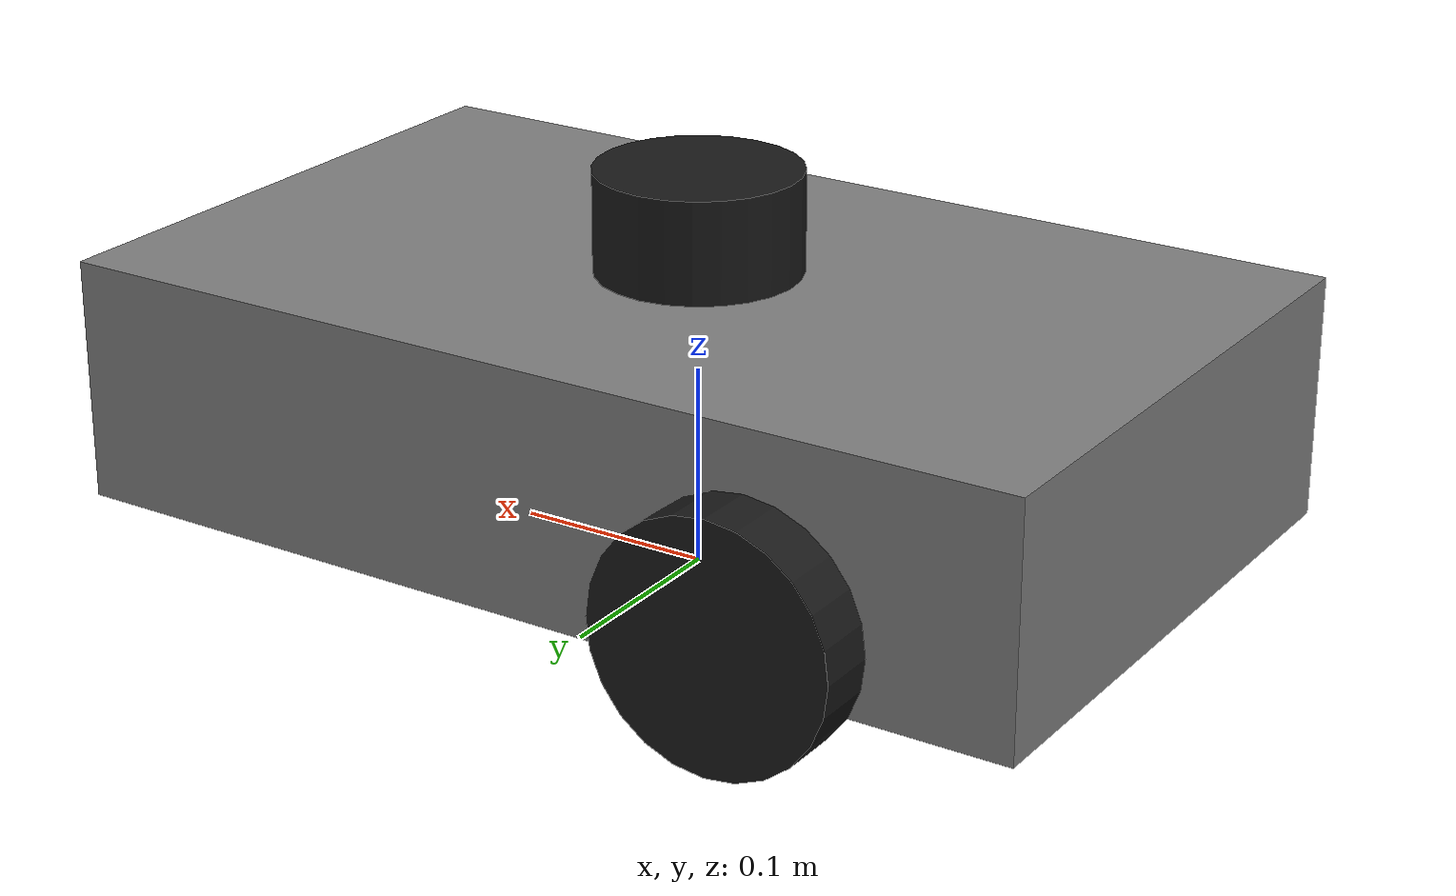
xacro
<?xml version="1.0"?>
<robot xmlns:xacro="http://www.ros.org/wiki/xacro" name="skid_steer_bot">

 <xacro:arg name="is_ignition" default="true"/>

  <!-- Include Gazebo Parameters -->
  <xacro:include filename="$(find robot_logging)/urdf/skid_steer_gazebo.xacro" />

  <!-- Include ros2_control Plugins -->
  <xacro:include filename="$(find robot_logging)/urdf/skid_steer_ros2_control.xacro" />

  <!-- Params -->
  <xacro:property name="base_l" value="0.50"/>   <!-- base length (m) -->
  <xacro:property name="base_w" value="0.30"/>   <!-- base width (m)  -->
  <xacro:property name="base_h" value="0.12"/>
  <xacro:property name="wheel_r" value="0.06"/>
  <xacro:property name="wheel_w" value="0.03"/>

  <!-- Base link -->
  <link name="base_link">
    <inertial>
      <origin xyz="0 0 -0.02" rpy="0 0 0"/>
      <mass value="20.0"/>
      <inertia ixx="0.15" iyy="0.20" izz="0.25" ixy="0" ixz="0" iyz="0"/>
    </inertial>
    <visual>
      <origin xyz="0 0 ${base_h/2 + wheel_r/2}" rpy="0 0 0"/>
      <geometry><box size="${base_l} ${base_w} ${base_h}"/></geometry>
      <material name="gray"><color rgba="0.5 0.5 0.5 1"/></material>
    </visual>
    <collision>
      <origin xyz="0 0 ${base_h/2 + wheel_r/2}" rpy="0 0 0"/>
      <geometry><box size="${base_l} ${base_w} ${base_h}"/></geometry>
    </collision>
  </link>

  <!-- Wheel macro -->
<xacro:macro name="wheel" params="name x y axis_sign:=1.0">
  <link name="${name}">
    <inertial>
      <origin xyz="0 0 0" rpy="0 0 0"/>
      <mass value="5"/>
      <inertia ixx="0.001" iyy="0.001" izz="0.001" ixy="0" ixz="0" iyz="0"/>
    </inertial>
    <visual>
      <!-- cylinder’s axis along +y -->
      <origin xyz="0 0 0" rpy="1.5708 0 0"/>
      <geometry><cylinder radius="${wheel_r}" length="${wheel_w}"/></geometry>
      <material name="black"><color rgba="0.1 0.1 0.1 1"/></material>
    </visual>
    <collision>
      <origin xyz="0 0 0" rpy="1.5708 0 0"/>
      <geometry><cylinder radius="${wheel_r}" length="${wheel_w}"/></geometry>
    </collision>
  </link>

  <joint name="${name}_joint" type="continuous">
    <parent link="base_link"/>
    <child link="${name}"/>
    <origin xyz="${x} ${y} ${wheel_r}" rpy="0 0 0"/>
    <!-- Positive velocity rolls forward on left; flip sign on right -->
    <axis xyz="0 ${axis_sign} 0"/>
  </joint>
</xacro:macro>

 <!-- LEFT/RIGHT DRIVE WHEELS (keep your macro, place around x=0, y=±0.165) -->
<xacro:wheel name="left_wheel"  x="-0.12" y="0.165" axis_sign="1" />
<xacro:wheel name="right_wheel" x="-0.12" y="-0.165" axis_sign="1"/>

<!-- BALL CASTER (passive) -->
<link name="caster_ball_link">
  <inertial>
    <origin xyz="0 0 0" rpy="0 0 0"/>
    <mass value="0.05"/>
    <inertia ixx="1e-5" iyy="1e-5" izz="1e-5" ixy="0" ixz="0" iyz="0"/>
  </inertial>
  <visual>
    <origin xyz="0 0 0" rpy="0 0 0"/>
    <geometry><sphere radius="0.02"/></geometry>
    <material name="black"><color rgba="0.1 0.1 0.1 1"/></material>
  </visual>
  <collision>
    <origin xyz="0 0 0" rpy="0 0 0"/>
    <geometry><sphere radius="0.02"/></geometry>
  </collision>
</link>

<!-- Fix the caster under the base (no joint needed for a ball) -->
<joint name="caster_ball_joint" type="fixed">
  <parent link="base_link"/>
  <!-- place it slightly behind center; z = ball radius so it touches ground -->
  <child link="caster_ball_link"/>
  <origin xyz="0.12 0 ${0.02}" rpy="0 0 0"/>
</joint>

  <link name="lidar_link">
  <inertial>
    <origin xyz="0 0 0" rpy="0 0 0"/>
    <mass value="0.1"/>
    <inertia ixx="1e-5" iyy="1e-5" izz="1e-5" ixy="0" ixz="0" iyz="0"/>
  </inertial>
  <visual>
    <origin xyz="0 0 0" rpy="0 0 0"/>
    <geometry>
      <cylinder length="0.05" radius="0.05"/>
    </geometry>
    <material name="black">
      <color rgba="0.1 0.1 0.1 1"/>
    </material>
  </visual>
  <collision>
    <origin xyz="0 0 0" rpy="0 0 0"/>
    <geometry>
      <cylinder length="0.05" radius="0.05"/>
    </geometry>
  </collision>
</link>

<joint name="lidar_joint" type="fixed">
  <parent link="base_link"/>
  <child link="lidar_link"/>
  <origin xyz="0 0 ${wheel_r/2 + base_h +0.025}" rpy="0 0 0"/>
</joint>

  </robot>

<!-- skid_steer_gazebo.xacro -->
<robot name="skid_steer_bot" xmlns:xacro="http://ros.org/wiki/xacro">
<xacro:property name="body_color" value="Gazebo/Silver" />
<gazebo reference="base_link">
  <material>${body_color}</material>
  <mu1>0.2</mu1>
  <mu2>0.2</mu2>
  <selfCollide>true</selfCollide>
  <gravity>true</gravity>
</gazebo>
  <!-- Wheels -->
  <!-- LEFT DRIVE WHEEL -->
  <gazebo reference="left_wheel">
    <mu1>1000000000000000.0</mu1>       <!-- forward traction -->
    <mu2>1000000000000000.0</mu2>       <!-- lateral traction (equal, avoids scrub issues) -->
    <kp>1000000000000.0</kp>
    <kd>10</kd>
    <minDepth>0.001</minDepth>
    <maxVel>0.1</maxVel>
  </gazebo>

  <!-- RIGHT DRIVE WHEEL -->
  <gazebo reference="right_wheel">
    <mu1>1000000000000000.0</mu1>
    <mu2>1000000000000000.0</mu2>
    <kp>1000000000000.0</kp>
    <kd>10</kd>
    <minDepth>0.001</minDepth>
    <maxVel>0.1</maxVel>
  </gazebo>

  <!-- FRONT CASTER BALL -->
  <gazebo reference="caster_ball_link">
     <mu1>0.1</mu1>
    <mu2>0.1</mu2>
    <kp>1000000.0</kp>
    <kd>100.0</kd>
    <minDepth>0.001</minDepth>
    <maxVel>1.0</maxVel>
  </gazebo>

<!-- LiDAR Plugin -->
<gazebo reference="lidar_link">
  <sensor name="gpu_lidar" type="gpu_lidar">
     <pose> 0 0 0 0 0 0</pose>

      <!-- Topic on Gazebo Transport side -->
      <topic>lidar</topic>
      <!-- Hz -->
      <update_rate>10</update_rate>

      <ray>
        <scan>
          <horizontal>
            <samples>1200</samples>
            <resolution>1</resolution>
            <min_angle>-1.396263</min_angle>  <!-- -80 deg -->
            <max_angle> 1.396263</max_angle>  <!-- +80 deg -->
          </horizontal>
          <vertical>
            <samples>1</samples>
            <resolution>0.01</resolution>
            <min_angle>0</min_angle>
            <max_angle>0</max_angle>
          </vertical>
        </scan>

        <range>
          <min>0.08</min>
          <max>10.0</max>
          <resolution>0.01</resolution>
        </range>
      </ray>

      <always_on>1</always_on>
      <visualize>true</visualize>
    <frame_id>lidar_link</frame_id>
  </sensor>
</gazebo>

<gazebo>
    <!-- ROS 2 Humble -->
    <xacro:if value="$(arg is_ignition)">
      <plugin filename="ign_ros2_control-system" name="ign_ros2_control::IgnitionROS2ControlPlugin">
        <parameters>/home/tersoo/autonomous-robot-logging-with-ROS2-jazzy/myros2_ws/src/robot_logging/config/controllers.yaml</parameters>
      </plugin>
    </xacro:if>

    <!-- ROS 2 Iron or above -->
    <xacro:unless value="$(arg is_ignition)">
      <plugin filename="gz_ros2_control-system" name="gz_ros2_control::GazeboSimROS2ControlPlugin">
        <parameters>/home/tersoo/autonomous-robot-logging-with-ROS2-jazzy/myros2_ws/src/robot_logging/config/controllers.yaml</parameters>
      </plugin>
    </xacro:unless>
  </gazebo>

</robot>
